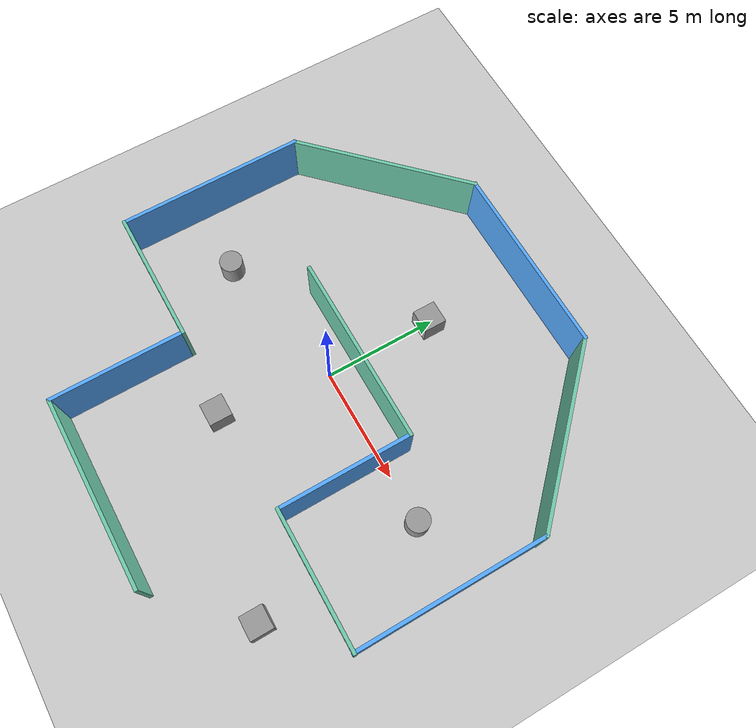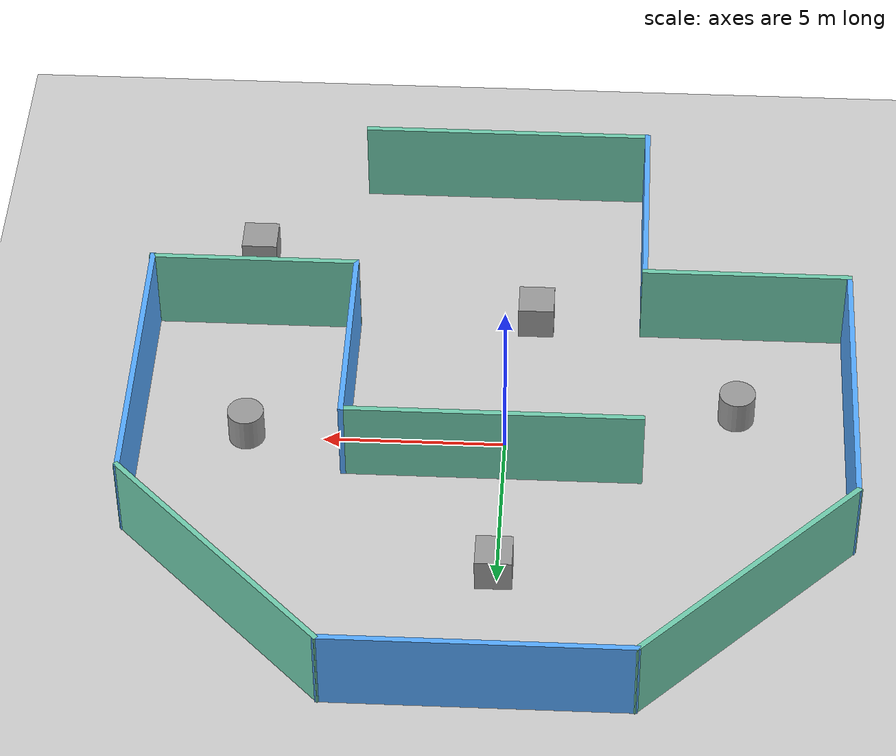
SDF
<sdf version="1.6">
 <world name="default">
  <light name="sun" type="directional">
   <pose>0 0 10 0 -0 0</pose>
   <diffuse>0.8 0.8 0.8 1</diffuse>
   <specular>0.2 0.2 0.2 1</specular>
   <attenuation>
    <range>1000</range>
    <constant>0.9</constant>
    <linear>0.01</linear>
    <quadratic>0.001</quadratic>
   </attenuation>
   <direction>-0.5 0.1 -0.9</direction>
  </light>
  <model name="ground_plane">
   <static>1</static>
   <link name="link">
    <collision name="collision">
     <geometry><plane><normal>0 0 1</normal><size>100 100</size></plane></geometry>
     <surface>
      <contact><collide_bitmask>65535</collide_bitmask></contact>
      <friction><ode><mu>100</mu><mu2>50</mu2></ode></friction>
     </surface>
    </collision>
    <visual name="visual">
     <cast_shadows>0</cast_shadows>
     <geometry><plane><normal>0 0 1</normal><size>100 100</size></plane></geometry>
     <material>
      <script><uri>file://media/materials/scripts/gazebo.material</uri><name>Gazebo/Grey</name></script>
     </material>
    </visual>
   </link>
  </model>
  <gravity>0 0 -9.8</gravity>
  <magnetic_field>6e-06 2.3e-05 -4.2e-05</magnetic_field>
  <atmosphere type="adiabatic"/>
  <physics name="default_physics" default="0" type="ode">
   <max_step_size>0.001</max_step_size>
   <real_time_factor>1</real_time_factor>
   <real_time_update_rate>1000</real_time_update_rate>
  </physics>
  <scene><ambient>0.4 0.4 0.4 1</ambient><background>0.7 0.7 0.7 1</background><shadows>1</shadows></scene>
  <spherical_coordinates>
   <surface_model>EARTH_WGS84</surface_model>
   <latitude_deg>0</latitude_deg>
   <longitude_deg>0</longitude_deg>
   <elevation>0</elevation>
   <heading_deg>0</heading_deg>
  </spherical_coordinates>
  <model name="localize_room">
   <pose>0.334195 -0.497504 0 0 -0 0</pose>
   <link name="Wall_15">
    <collision name="Wall_15_Collision">
     <geometry><box><size>8.284 0.15 2.5</size></box></geometry>
     <pose>0 0 1.25 0 -0 0</pose>
    </collision>
    <visual name="Wall_15_Visual">
     <pose>0 0 1.25 0 -0 0</pose>
     <geometry><box><size>8.284 0.15 2.5</size></box></geometry>
     <material>
      <script><uri>file://media/materials/scripts/gazebo.material</uri><name>Gazebo/Grey</name></script>
      <ambient>0.333333 0.666667 1 1</ambient>
     </material>
     <meta><layer>0</layer></meta>
    </visual>
    <pose>9.775 -0.015533 0 0 -0 1.5708</pose>
   </link>
   <link name="Wall_21">
    <collision name="Wall_21_Collision">
     <geometry><box><size>8.25 0.15 2.5</size></box></geometry>
     <pose>0 0 1.25 0 -0 0</pose>
    </collision>
    <visual name="Wall_21_Visual">
     <pose>0 0 1.25 0 -0 0</pose>
     <geometry><box><size>8.25 0.15 2.5</size></box></geometry>
     <material>
      <script><uri>file://media/materials/scripts/gazebo.material</uri><name>Gazebo/Grey</name></script>
      <ambient>0.333333 0.666667 1 1</ambient>
     </material>
     <meta><layer>0</layer></meta>
    </visual>
    <pose>-9.775 0.001467 0 0 -0 1.5708</pose>
   </link>
   <link name="Wall_27">
    <collision name="Wall_27_Collision">
     <geometry><box><size>8.284 0.15 2.5</size></box></geometry>
     <pose>0 0 1.25 0 -0 0</pose>
    </collision>
    <visual name="Wall_27_Visual">
     <pose>0 0 1.25 0 -0 0</pose>
     <geometry><box><size>8.284 0.15 2.5</size></box></geometry>
     <material>
      <script><uri>file://media/materials/scripts/gazebo.material</uri><name>Gazebo/Grey</name></script>
      <ambient>0.333333 0.666667 1 1</ambient>
     </material>
     <meta><layer>0</layer></meta>
    </visual>
    <pose>0 9.75947 0 0 -0 0</pose>
   </link>
   <link name="Wall_33">
    <collision name="Wall_33_Collision">
     <geometry><box><size>8.22233 0.15 2.5</size></box></geometry>
     <pose>0 0 1.25 0 -0 0</pose>
    </collision>
    <visual name="Wall_33_Visual">
     <pose>0 0 1.25 0 -0 0</pose>
     <geometry><box><size>8.22233 0.15 2.5</size></box></geometry>
     <material>
      <script><uri>file://media/materials/scripts/gazebo.material</uri><name>Gazebo/Grey</name></script>
      <ambient>0.435294 0.796078 0.67451 1</ambient>
     </material>
     <meta><layer>0</layer></meta>
    </visual>
    <pose>-6.921 6.90547 0 0 0 -2.35619</pose>
   </link>
   <link name="Wall_35">
    <collision name="Wall_35_Collision">
     <geometry><box><size>8.22233 0.15 2.5</size></box></geometry>
     <pose>0 0 1.25 0 -0 0</pose>
    </collision>
    <visual name="Wall_35_Visual">
     <pose>0 0 1.25 0 -0 0</pose>
     <geometry><box><size>8.22233 0.15 2.5</size></box></geometry>
     <material>
      <script><uri>file://media/materials/scripts/gazebo.material</uri><name>Gazebo/Grey</name></script>
      <ambient>0.435294 0.796078 0.67451 1</ambient>
     </material>
     <meta><layer>0</layer></meta>
    </visual>
    <pose>6.921 6.90547 0 0 0 -0.785398</pose>
   </link>
   <link name="Wall_4">
    <collision name="Wall_4_Collision">
     <geometry><box><size>8.284 0.15 2.5</size></box></geometry>
     <pose>0 0 1.25 0 -0 0</pose>
    </collision>
    <visual name="Wall_4_Visual">
     <pose>0 0 1.25 0 -0 0</pose>
     <geometry><box><size>8.284 0.15 2.5</size></box></geometry>
     <material>
      <script><uri>file://media/materials/scripts/gazebo.material</uri><name>Gazebo/Grey</name></script>
      <ambient>0.435294 0.796078 0.67451 1</ambient>
     </material>
     <meta><layer>0</layer></meta>
    </visual>
    <pose>0 -9.79053 0 0 -0 0</pose>
   </link>
   <link name="Wall_56">
    <collision name="Wall_56_Collision">
     <geometry><box><size>5.858 0.15 2.5</size></box></geometry>
     <pose>0 0 1.25 0 -0 0</pose>
    </collision>
    <visual name="Wall_56_Visual">
     <pose>0 0 1.25 0 -0 0</pose>
     <geometry><box><size>5.858 0.15 2.5</size></box></geometry>
     <material>
      <script><uri>file://media/materials/scripts/gazebo.material</uri><name>Gazebo/Grey</name></script>
      <ambient>0.435294 0.796078 0.67451 1</ambient>
     </material>
     <meta><layer>0</layer></meta>
    </visual>
    <pose>-6.921 -4.04853 0 0 -0 0</pose>
   </link>
   <link name="Wall_58">
    <collision name="Wall_58_Collision">
     <geometry><box><size>5.75 0.15 2.5</size></box></geometry>
     <pose>0 0 1.25 0 -0 0</pose>
    </collision>
    <visual name="Wall_58_Visual">
     <pose>0 0 1.25 0 -0 0</pose>
     <geometry><box><size>5.75 0.15 2.5</size></box></geometry>
     <material>
      <script><uri>file://media/materials/scripts/gazebo.material</uri><name>Gazebo/Grey</name></script>
      <ambient>0.333333 0.666667 1 1</ambient>
     </material>
     <meta><layer>0</layer></meta>
    </visual>
    <pose>-4.067 -6.99053 0 0 -0 1.5708</pose>
   </link>
   <link name="Wall_60">
    <collision name="Wall_60_Collision">
     <geometry><box><size>5.90863 0.15 2.5</size></box></geometry>
     <pose>0 0 1.25 0 -0 0</pose>
    </collision>
    <visual name="Wall_60_Visual">
     <pose>0 0 1.25 0 -0 0</pose>
     <geometry><box><size>5.90863 0.15 2.5</size></box></geometry>
     <material>
      <script><uri>file://media/materials/scripts/gazebo.material</uri><name>Gazebo/Grey</name></script>
      <ambient>0.435294 0.796078 0.67451 1</ambient>
     </material>
     <meta><layer>0</layer></meta>
    </visual>
    <pose>6.91525 -4.06048 0 0 0 -0.000864</pose>
   </link>
   <link name="Wall_63">
    <collision name="Wall_63_Collision">
     <geometry><box><size>8.25 0.15 2.5</size></box></geometry>
     <pose>0 0 1.25 0 -0 0</pose>
    </collision>
    <visual name="Wall_63_Visual">
     <pose>0 0 1.25 0 -0 0</pose>
     <geometry><box><size>8.25 0.15 2.5</size></box></geometry>
     <material>
      <script><uri>file://media/materials/scripts/gazebo.material</uri><name>Gazebo/Grey</name></script>
      <ambient>0.435294 0.796078 0.67451 1</ambient>
     </material>
     <meta><layer>0</layer></meta>
    </visual>
    <pose>-0.014065 1.69201 0 0 -0 0</pose>
   </link>
   <link name="Wall_64">
    <collision name="Wall_64_Collision">
     <geometry><box><size>5.9 0.15 2.5</size></box></geometry>
     <pose>0 0 1.25 0 -0 0</pose>
    </collision>
    <visual name="Wall_64_Visual">
     <pose>0 0 1.25 0 -0 0</pose>
     <geometry><box><size>5.9 0.15 2.5</size></box></geometry>
     <material>
      <script><uri>file://media/materials/scripts/gazebo.material</uri><name>Gazebo/Grey</name></script>
      <ambient>0.333333 0.666667 1 1</ambient>
     </material>
     <meta><layer>0</layer></meta>
    </visual>
    <pose>4.03594 -1.18299 0 0 0 -1.5708</pose>
   </link>
   <static>1</static>
  </model>
  <model name="unit_box">
   <pose>-0.701856 -4.83754 0.499995 0 -1e-05 0</pose>
   <link name="link">
    <inertial>
     <mass>1</mass>
     <inertia>
      <ixx>0.166667</ixx>
      <ixy>0</ixy>
      <ixz>0</ixz>
      <iyy>0.166667</iyy>
      <iyz>0</iyz>
      <izz>0.166667</izz>
     </inertia>
    </inertial>
    <collision name="collision"><geometry><box><size>1 1 1</size></box></geometry></collision>
    <visual name="visual">
     <geometry><box><size>1 1 1</size></box></geometry>
     <material>
      <script><name>Gazebo/Grey</name><uri>file://media/materials/scripts/gazebo.material</uri></script>
     </material>
    </visual>
   </link>
  </model>
  <model name="unit_box_0">
   <pose>7.3856 -7.16936 0.499995 -1e-05 0 0</pose>
   <link name="link">
    <inertial>
     <mass>1</mass>
     <inertia>
      <ixx>0.166667</ixx>
      <ixy>0</ixy>
      <ixz>0</ixz>
      <iyy>0.166667</iyy>
      <iyz>0</iyz>
      <izz>0.166667</izz>
     </inertia>
    </inertial>
    <collision name="collision"><geometry><box><size>1 1 1</size></box></geometry></collision>
    <visual name="visual">
     <geometry><box><size>1 1 1</size></box></geometry>
     <material>
      <script><name>Gazebo/Grey</name><uri>file://media/materials/scripts/gazebo.material</uri></script>
     </material>
    </visual>
   </link>
  </model>
  <model name="unit_box_1">
   <pose>0.082207 4.78343 0.499995 0 -1e-05 0</pose>
   <link name="link">
    <inertial>
     <mass>1</mass>
     <inertia>
      <ixx>0.166667</ixx>
      <ixy>0</ixy>
      <ixz>0</ixz>
      <iyy>0.166667</iyy>
      <iyz>0</iyz>
      <izz>0.166667</izz>
     </inertia>
    </inertial>
    <collision name="collision"><geometry><box><size>1 1 1</size></box></geometry></collision>
    <visual name="visual">
     <geometry><box><size>1 1 1</size></box></geometry>
     <material>
      <script><name>Gazebo/Grey</name><uri>file://media/materials/scripts/gazebo.material</uri></script>
     </material>
    </visual>
   </link>
  </model>
  <model name="unit_cylinder">
   <pose>7.12967 -0.02648 0.499992 -3e-06 4e-06 0</pose>
   <link name="link">
    <inertial>
     <mass>1</mass>
     <inertia><ixx>0.145833</ixx><ixy>0</ixy><ixz>0</ixz><iyy>0.145833</iyy><iyz>0</iyz><izz>0.125</izz></inertia>
    </inertial>
    <collision name="collision">
     <geometry><cylinder><radius>0.5</radius><length>1</length></cylinder></geometry>
    </collision>
    <visual name="visual">
     <geometry><cylinder><radius>0.5</radius><length>1</length></cylinder></geometry>
     <material>
      <script><name>Gazebo/Grey</name><uri>file://media/materials/scripts/gazebo.material</uri></script>
     </material>
    </visual>
   </link>
  </model>
  <model name="unit_cylinder_0">
   <pose>-6.3721 -1.31397 0.499997 3e-06 4e-06 -0</pose>
   <link name="link">
    <inertial>
     <mass>1</mass>
     <inertia><ixx>0.145833</ixx><ixy>0</ixy><ixz>0</ixz><iyy>0.145833</iyy><iyz>0</iyz><izz>0.125</izz></inertia>
    </inertial>
    <collision name="collision">
     <geometry><cylinder><radius>0.5</radius><length>1</length></cylinder></geometry>
    </collision>
    <visual name="visual">
     <geometry><cylinder><radius>0.5</radius><length>1</length></cylinder></geometry>
     <material>
      <script><name>Gazebo/Grey</name><uri>file://media/materials/scripts/gazebo.material</uri></script>
     </material>
    </visual>
   </link>
  </model>
 </world>
</sdf>
